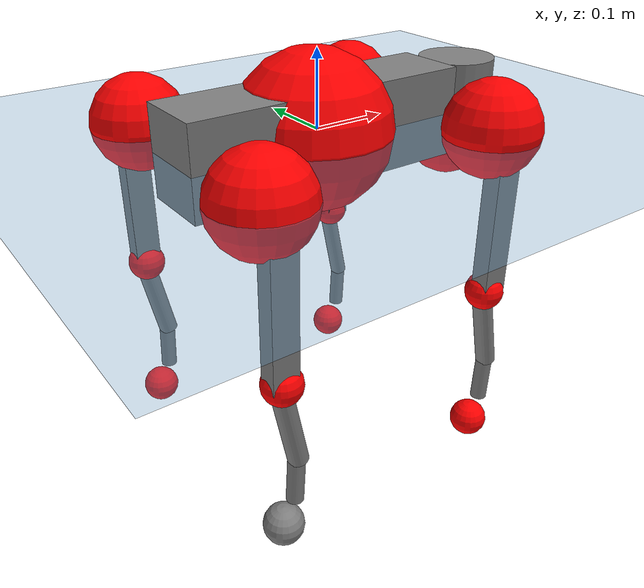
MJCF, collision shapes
<mujoco model="go2">
  <compiler angle="radian" assetdir="assets" balanceinertia="true" inertiafromgeom="false"/>

  <option timestep="0.005" density="1.2" viscosity="2e-05"/>

  <size nkey="1"/>

  <visual>
    <quality shadowsize="8192"/>
    <map shadowclip="0.5"/>
  </visual>

  <default>
    <default class="/">
      <geom contype="0" conaffinity="0" group="1" solref="-1000 -80"/>
      <site size="0.01 0.005 0.005" group="5"/>
      <general forcelimited="true" biastype="affine" gainprm="20" biasprm="0 -20 -0.5"/>
      <default class="go2">
        <joint armature="0.01" damping="0.01" frictionloss="0.2"/>
        <geom condim="1" margin="0.001"/>
        <default class="visual">
          <geom type="mesh" group="2"/>
        </default>
        <default class="collision">
          <geom group="3"/>
          <default class="foot">
            <geom size="0.022 0 0" condim="6" priority="1" friction="0.8 0.02 0.01" solimp="0.015 1 0.022"/>
          </default>
        </default>
        <default class="reward_collision_sphere">
          <geom group="5" rgba="1 0 0 1"/>
        </default>
      </default>
    </default>
  </default>

  <asset>
    <texture type="skybox" colorspace="auto" name="//unnamed_texture_0" builtin="gradient" rgb1="0.95 0.95 0.95" rgb2="0.95 0.95 0.95" width="100" height="600"/>
    <texture type="2d" colorspace="auto" name="texplane" builtin="checker" rgb1="0.345 0.575 0.748" rgb2="0.345 0.575 0.748" markrgb="1 1 1" width="512" height="512"/>
    <material name="MatPlane" class="/" texture="texplane" texuniform="true" texrepeat="2 2" specular="0.9"/>
    <material name="metal" class="/" rgba="0.9 0.95 0.95 1"/>
    <material name="black" class="/" rgba="0 0 0 1"/>
    <material name="white" class="/"/>
    <material name="gray" class="/" rgba="0.671705 0.692426 0.77427 1"/>
    <mesh name="base_0" class="/" file="base_0.obj"/>
    <mesh name="base_1" class="/" file="base_1.obj"/>
    <mesh name="base_2" class="/" file="base_2.obj"/>
    <mesh name="base_3" class="/" file="base_3.obj"/>
    <mesh name="base_4" class="/" file="base_4.obj"/>
    <mesh name="hip_0" class="/" file="hip_0.obj"/>
    <mesh name="hip_1" class="/" file="hip_1.obj"/>
    <mesh name="thigh_0" class="/" file="thigh_0.obj"/>
    <mesh name="thigh_1" class="/" file="thigh_1.obj"/>
    <mesh name="thigh_mirror_0" class="/" file="thigh_mirror_0.obj"/>
    <mesh name="thigh_mirror_1" class="/" file="thigh_mirror_1.obj"/>
    <mesh name="calf_0" class="/" file="calf_0.obj"/>
    <mesh name="calf_1" class="/" file="calf_1.obj"/>
    <mesh name="calf_mirror_0" class="/" file="calf_mirror_0.obj"/>
    <mesh name="calf_mirror_1" class="/" file="calf_mirror_1.obj"/>
    <mesh name="foot" class="/" file="foot.obj"/>
  </asset>

  <worldbody>
    <geom name="floor" class="/" size="100 100 0.125" type="plane" group="0" material="MatPlane"/>
    <light name="toplight_shadow" class="/" pos="0 0 5" dir="0.0990148 0.0990148 -0.990148" type="directional" ambient="0.04 0.04 0.04" diffuse="0.55 0.55 0.55" specular="0.12 0.12 0.12"/>
    <light name="toplight_fill" class="/" pos="0 0 5" dir="0.0990148 0.0990148 -0.990148" type="directional" castshadow="false" ambient="0.04 0.04 0.04" diffuse="0.3 0.3 0.3" specular="0.08 0.08 0.08"/>
    <body name="trunk" childclass="go2" pos="-0.00788365 -0.00200938 0.000769807" quat="0.999995 -0.00203488 0.000106747 0.00252139">
      <inertial pos="0.0249788 -0.000359907 -0.00727703" quat="-0.000490752 0.707645 0.00470338 0.706552" mass="8.19347" diaginertia="0.0454808 0.252074 0.0272032"/>
      <joint name="//unnamed_joint_0" type="free" armature="0" damping="0" frictionloss="0"/>
      <geom name="//unnamed_geom_1" class="visual" material="black" mesh="base_0"/>
      <geom name="//unnamed_geom_2" class="visual" material="black" mesh="base_1"/>
      <geom name="//unnamed_geom_3" class="visual" material="black" mesh="base_2"/>
      <geom name="//unnamed_geom_4" class="visual" material="white" mesh="base_3"/>
      <geom name="//unnamed_geom_5" class="visual" material="gray" mesh="base_4"/>
      <geom name="trunk_1" class="collision" size="0.192588 0.0478653 0.0583599" type="box"/>
      <geom name="trunk_2" class="collision" size="0.0511929 0.0460736" pos="0.240336 0 0.0102036" type="cylinder"/>
      <geom name="trunk_3" class="collision" size="0.0481213" pos="0.247083 0 -0.0612218"/>
      <geom name="//unnamed_geom_9" class="reward_collision_sphere" size="0.102386"/>
      <geom name="//unnamed_geom_10" class="reward_collision_sphere" size="0.0614314" pos="0.23612 0 -0.0459164"/>
      <site name="imu" pos="-0.0321544 -0.00779958 0.0128937" size="0.0102386"/>
      <camera name="track" pos="0 -2.41584 0" quat="0.707107 0.707107 0 0" mode="trackcom"/>
      <camera name="ego_camera" pos="0.263105 0 0.0459164" quat="-0.5 -0.5 0.5 0.5"/>
      <body name="FL_hip" pos="0.164646 0.054922 -0.000366462" quat="1 0.000176727 -1.54041e-05 -0.000181462">
        <inertial pos="-0.00240557 0.00602558 -0.00300036" quat="0.48838 0.501418 0.505173 0.504841" mass="0.751325" diaginertia="0.000347133 0.0015428 0.000529665"/>
        <joint name="FL_hip_joint" pos="0 0 0" axis="0.999226 -0.0363183 0.0151019" range="-1.19603 1.00038" armature="0.0104977" damping="0.00395032" frictionloss="0.197665"/>
        <geom name="//unnamed_geom_11" class="visual" material="metal" mesh="hip_0"/>
        <geom name="//unnamed_geom_12" class="visual" material="gray" mesh="hip_1"/>
        <geom name="//unnamed_geom_13" class="collision" size="0.0470974 0.0204771" pos="0 0.0966338 0" quat="0.707107 0.707107 0 0" type="cylinder"/>
        <geom name="//unnamed_geom_14" class="reward_collision_sphere" size="0.0614314" pos="0 0.0845546 0"/>
        <body name="FL_thigh" pos="-0.00102288 0.11594 -0.00188767" quat="0.999997 -0.000507369 0.00247189 0.000543101">
          <inertial pos="-0.00663565 -0.0243391 -0.0270627" quat="0.828918 0.0861081 -0.0197951 0.552348" mass="1.26174" diaginertia="0.00261978 0.0161036 0.000910786"/>
          <joint name="FL_thigh_joint" pos="0 0 0" axis="0.0035034 0.999993 0.000920192" stiffness="0.0416955" range="-1.58124 3.49911" armature="0.010355" damping="0.000569814" frictionloss="0.198691"/>
          <geom name="//unnamed_geom_15" class="visual" material="metal" mesh="thigh_0"/>
          <geom name="//unnamed_geom_16" class="visual" material="gray" mesh="thigh_1"/>
          <geom name="//unnamed_geom_17" class="collision" size="0.109041 0.0125423 0.0174056" pos="0 0 -0.108669" quat="0.707107 0 0.707107 0" type="box"/>
          <body name="FL_calf" pos="-0.000999272 0.00631993 -0.215721" quat="0.999999 -0.000741984 -0.000148366 0.000965978">
            <inertial pos="0.0100787 -0.000462036 -0.147196" quat="0.710922 0.0014074 -0.00502245 0.703252" mass="0.255654" diaginertia="0.000584694 0.00326642 5.34401e-05"/>
            <joint name="FL_calf_joint" pos="0 0 0" axis="0.00400578 0.999983 0.00429897" range="-2.59674 -0.794575" armature="0.00968978" damping="0.031193" frictionloss="0.191242"/>
            <geom name="//unnamed_geom_18" class="visual" material="gray" mesh="calf_0"/>
            <geom name="//unnamed_geom_19" class="visual" material="black" mesh="calf_1"/>
            <geom name="FL_calf0" class="collision" size="0.0122863 0.0614314" pos="0.00674628 0 -0.0612218" quat="0.994493 0 -0.104807 0" type="cylinder"/>
            <geom name="//unnamed_geom_21" class="collision" size="0.0112624 0.0332754" pos="0.0168657 0 -0.151014" quat="0.999688 0 0.0249974 0" type="cylinder"/>
            <geom name="//unnamed_geom_22" class="visual" pos="0 0 -0.217337" quat="1 0 0 0" material="black" mesh="foot"/>
            <geom name="FL_foot" class="foot" size="0.0164626" pos="-0.00168657 0 -0.217337"/>
            <geom name="//unnamed_geom_24" class="reward_collision_sphere" size="0.0255964"/>
            <geom name="//unnamed_geom_25" class="reward_collision_sphere" size="0.0255964" pos="-0.00168657 0 -0.217337"/>
            <site name="FL_foot" class="foot" pos="-0.00168657 0 -0.217337" size="0.0102386"/>
          </body>
        </body>
      </body>
      <body name="FR_hip" pos="0.166291 -0.0555603 0.00676576" quat="0.999998 -0.000616683 -0.00205124 0.000212146">
        <inertial pos="-0.0057917 0.00333028 8.78485e-05" quat="0.491139 0.517045 0.511003 0.479919" mass="0.738941" diaginertia="0.000403884 0.00156943 0.000560475"/>
        <joint name="FR_hip_joint" pos="0 0 0" axis="0.99998 -0.00538799 -0.00343291" range="-1.0362 1.0417" armature="0.0107858" damping="0.022342" frictionloss="0.257587"/>
        <geom name="//unnamed_geom_26" class="visual" pos="0 1.63393e-09 7.00827e-08" quat="4.63268e-05 1 0 0" material="metal" mesh="hip_0"/>
        <geom name="//unnamed_geom_27" class="visual" pos="0 2.6488e-09 -1.73341e-07" quat="4.63268e-05 1 0 0" material="gray" mesh="hip_1"/>
        <geom name="//unnamed_geom_28" class="collision" size="0.0470974 0.0204771" pos="0 -0.0966338 0" quat="0.707107 0.707107 0 0" type="cylinder"/>
        <geom name="//unnamed_geom_29" class="reward_collision_sphere" size="0.0614314" pos="0 -0.0845546 0"/>
        <body name="FR_thigh" pos="1.88811e-06 -0.107761 -0.00148899" quat="0.999999 0.000781039 -0.00088101 -0.000323156">
          <inertial pos="-0.00477736 0.0309551 -0.0354195" quat="0.559854 -0.0215749 0.075034 0.824905" mass="1.21293" diaginertia="0.00249629 0.0150352 0.000922354"/>
          <joint name="FR_thigh_joint" pos="0 0 0" axis="-0.0110807 -0.999877 -0.0111187" stiffness="0.00970781" range="-3.539 1.47799" armature="0.0105698" damping="0.00545569" frictionloss="0.200464"/>
          <geom name="//unnamed_geom_30" class="visual" material="metal" mesh="thigh_mirror_0"/>
          <geom name="//unnamed_geom_31" class="visual" material="gray" mesh="thigh_mirror_1"/>
          <geom name="//unnamed_geom_32" class="collision" size="0.109041 0.0125423 0.0174056" pos="0 0 -0.108669" quat="0.707107 0 0.707107 0" type="box"/>
          <body name="FR_calf" pos="-0.000972437 0.00437251 -0.217963" quat="1 0.000110647 -0.000337585 -0.000130916">
            <inertial pos="0.00577832 0.00278205 -0.143356" quat="0.707517 0.0034586 -0.0261058 0.706205" mass="0.253317" diaginertia="0.00063909 0.00376571 6.12687e-05"/>
            <joint name="FR_calf_joint" pos="0 0 0" axis="-0.0199047 -0.999432 -0.0271799" stiffness="0.0301862" range="0.878062 2.65523" armature="0.00980448" damping="0" frictionloss="0.204705"/>
            <geom name="//unnamed_geom_33" class="visual" material="gray" mesh="calf_mirror_0"/>
            <geom name="//unnamed_geom_34" class="visual" material="black" mesh="calf_mirror_1"/>
            <geom name="FR_calf0" class="collision" size="0.0133101 0.0614314" pos="0.00843285 0 -0.0612218" quat="0.995004 0 -0.0998334 0" type="cylinder"/>
            <geom name="//unnamed_geom_36" class="collision" size="0.0112624 0.0332754" pos="0.0168657 0 -0.151014" quat="0.999688 0 0.0249974 0" type="cylinder"/>
            <geom name="//unnamed_geom_37" class="visual" pos="0 0 -0.217337" quat="1 0 0 0" material="black" mesh="foot"/>
            <geom name="FR_foot" class="foot" size="0.0228619" pos="-0.00168657 0 -0.217337"/>
            <geom name="//unnamed_geom_39" class="reward_collision_sphere" size="0.0255964"/>
            <geom name="//unnamed_geom_40" class="reward_collision_sphere" size="0.0255964" pos="-0.00168657 0 -0.217337"/>
            <site name="FR_foot" class="foot" pos="-0.00168657 0 -0.217337" size="0.0102386"/>
          </body>
        </body>
      </body>
      <body name="RL_hip" pos="-0.165924 0.0567697 0.00450752" quat="1 -2.31672e-05 -0.000796685 -0.000418771">
        <inertial pos="0.00464508 -0.00461655 0.00379396" quat="0.473539 0.499066 0.522646 0.503523" mass="0.681995" diaginertia="0.000396271 0.00154656 0.000501503"/>
        <joint name="RL_hip_joint" pos="0 0 0" axis="-0.999704 0.0135437 -0.0202311" range="-1.09126 1.08723" armature="0.0124608" damping="0" frictionloss="0.145001"/>
        <geom name="//unnamed_geom_41" class="visual" pos="1.54263e-09 0 3.02392e-07" quat="4.63268e-05 0 1 0" material="metal" mesh="hip_0"/>
        <geom name="//unnamed_geom_42" class="visual" pos="2.50079e-09 0 2.68178e-07" quat="4.63268e-05 0 1 0" material="gray" mesh="hip_1"/>
        <geom name="//unnamed_geom_43" class="collision" size="0.0470974 0.0204771" pos="0 0.0966338 0" quat="0.707107 0.707107 0 0" type="cylinder"/>
        <geom name="//unnamed_geom_44" class="reward_collision_sphere" size="0.0614314" pos="0 0.0845546 0"/>
        <body name="RL_thigh" pos="-6.50658e-05 0.120927 -0.0057906" quat="0.999999 0.000529558 -0.000943409 -0.000259643">
          <inertial pos="-0.00300421 -0.025911 -0.0311036" quat="0.828305 0.0859822 -0.0193675 0.553302" mass="1.14637" diaginertia="0.0026323 0.0156876 0.000954295"/>
          <joint name="RL_thigh_joint" pos="0 0 0" axis="-0.0118929 0.999928 0.00170976" range="-0.489278 4.55575" armature="0.00835152" damping="0.0126802" frictionloss="0.205611"/>
          <geom name="//unnamed_geom_45" class="visual" material="metal" mesh="thigh_0"/>
          <geom name="//unnamed_geom_46" class="visual" material="gray" mesh="thigh_1"/>
          <geom name="//unnamed_geom_47" class="collision" size="0.109041 0.0125423 0.0174056" pos="0 0 -0.108669" quat="0.707107 0 0.707107 0" type="box"/>
          <body name="RL_calf" pos="0.000239154 -0.000545446 -0.210651" quat="1 -0.000722152 -0.000197196 0.000642493">
            <inertial pos="0.00477762 -0.00819454 -0.142496" quat="0.707193 -0.000856349 -0.00860242 0.706968" mass="0.261119" diaginertia="0.000653824 0.00388527 6.49567e-05"/>
            <joint name="RL_calf_joint" pos="0 0 0" axis="0.0141452 0.999817 0.0128849" stiffness="0.040763" range="-2.70894 -0.848849" armature="0.00942922" damping="0.0226054" frictionloss="0.13127"/>
            <geom name="//unnamed_geom_48" class="visual" material="gray" mesh="calf_0"/>
            <geom name="//unnamed_geom_49" class="visual" material="black" mesh="calf_1"/>
            <geom name="RL_calf0" class="collision" size="0.0133101 0.0614314" pos="0.00843285 0 -0.0612218" quat="0.995004 0 -0.0998334 0" type="cylinder"/>
            <geom name="//unnamed_geom_51" class="collision" size="0.0112624 0.0332754" pos="0.0168657 0 -0.151014" quat="0.999688 0 0.0249974 0" type="cylinder"/>
            <geom name="//unnamed_geom_52" class="visual" pos="0 0 -0.217337" quat="1 0 0 0" material="black" mesh="foot"/>
            <geom name="RL_foot" class="foot" size="0.0234037" pos="-0.00168657 0 -0.217337"/>
            <geom name="//unnamed_geom_54" class="reward_collision_sphere" size="0.0255964"/>
            <geom name="//unnamed_geom_55" class="reward_collision_sphere" size="0.0255964" pos="-0.00168657 0 -0.217337"/>
            <site name="RL_foot" class="foot" pos="-0.00168657 0 -0.217337" size="0.0102386"/>
          </body>
        </body>
      </body>
      <body name="RR_hip" pos="-0.16233 -0.0549292 -0.00352946" quat="0.999994 0.00247738 0.00190659 -0.00149018">
        <inertial pos="-0.00270238 -0.00612275 0.00699747" quat="0.504641 0.496563 0.506258 0.492408" mass="0.719256" diaginertia="0.000370196 0.00149361 0.000512256"/>
        <joint name="RR_hip_joint" pos="0 0 0" axis="-0.999273 0.0123726 -0.0360538" range="-1.03555 1.08753" armature="0.0106764" damping="0" frictionloss="0.225315"/>
        <geom name="//unnamed_geom_56" class="visual" pos="-1.53001e-09 1.63393e-09 2.32309e-07" quat="2.14617e-09 4.63268e-05 4.63268e-05 -1" material="metal" mesh="hip_0"/>
        <geom name="//unnamed_geom_57" class="visual" pos="-2.53202e-09 2.6488e-09 4.4152e-07" quat="2.14617e-09 4.63268e-05 4.63268e-05 -1" material="gray" mesh="hip_1"/>
        <geom name="//unnamed_geom_58" class="collision" size="0.0470974 0.0204771" pos="0 -0.0966338 0" quat="0.707107 0.707107 0 0" type="cylinder"/>
        <geom name="//unnamed_geom_59" class="reward_collision_sphere" size="0.0614314" pos="0 -0.0845546 0"/>
        <body name="RR_thigh" pos="-0.000932446 -0.11472 0.00740153" quat="1 -5.25099e-05 -1.69667e-05 -3.96534e-05">
          <inertial pos="-0.00556951 0.0269657 -0.0335674" quat="0.552333 -0.0214732 0.0855683 0.828942" mass="1.31909" diaginertia="0.00247117 0.0145221 0.000966338"/>
          <joint name="RR_thigh_joint" pos="0 0 0" axis="-0.00605299 -0.999917 -0.0113771" range="-4.55444 0.41732" armature="0.00906353" damping="0.0156829" frictionloss="0.225283"/>
          <geom name="//unnamed_geom_60" class="visual" material="metal" mesh="thigh_mirror_0"/>
          <geom name="//unnamed_geom_61" class="visual" material="gray" mesh="thigh_mirror_1"/>
          <geom name="//unnamed_geom_62" class="collision" size="0.109041 0.0125423 0.0174056" pos="0 0 -0.108669" quat="0.707107 0 0.707107 0" type="box"/>
          <body name="RR_calf" pos="0.00356738 0.00284531 -0.218406" quat="1 0.000226798 -0.000651694 0.000518908">
            <inertial pos="0.00887384 0.00310341 -0.144905" quat="0.708402 -0.00646723 0.00412448 0.705768" mass="0.254691" diaginertia="0.000643205 0.00384848 5.57742e-05"/>
            <joint name="RR_calf_joint" pos="0 0 0" axis="0.0192379 -0.999532 -0.0237999" range="0.831173 2.72897" armature="0.00963141" damping="0" frictionloss="0.190141"/>
            <geom name="//unnamed_geom_63" class="visual" material="gray" mesh="calf_mirror_0"/>
            <geom name="//unnamed_geom_64" class="visual" material="black" mesh="calf_mirror_1"/>
            <geom name="RR_calf0" class="collision" size="0.0133101 0.0614314" pos="0.00843285 0 -0.0612218" quat="0.995004 0 -0.0998334 0" type="cylinder"/>
            <geom name="//unnamed_geom_66" class="collision" size="0.0112624 0.0332754" pos="0.0168657 0 -0.151014" quat="0.999688 0 0.0249974 0" type="cylinder"/>
            <geom name="//unnamed_geom_67" class="visual" pos="0 0 -0.217337" quat="1 0 0 0" material="black" mesh="foot"/>
            <geom name="RR_foot" class="foot" size="0.026581" pos="-0.00168657 0 -0.217337"/>
            <geom name="//unnamed_geom_69" class="reward_collision_sphere" size="0.0255964"/>
            <geom name="//unnamed_geom_70" class="reward_collision_sphere" size="0.0255964" pos="-0.00168657 0 -0.217337"/>
            <site name="RR_foot" class="foot" pos="-0.00168657 0 -0.217337" size="0.0102386"/>
          </body>
        </body>
      </body>
    </body>
  </worldbody>

  <contact>
    <pair class="/" geom1="floor" geom2="FL_foot" name="//unnamed_contact_0"/>
    <pair class="/" geom1="floor" geom2="FR_foot" name="//unnamed_contact_1"/>
    <pair class="/" geom1="floor" geom2="RL_foot" name="//unnamed_contact_2"/>
    <pair class="/" geom1="floor" geom2="RR_foot" name="//unnamed_contact_3"/>
  </contact>

  <actuator>
    <general name="FL_hip" class="/" joint="FL_hip_joint" forcerange="-24.8266 24.8266" gainprm="19.5265" biasprm="0 -19.5265 -0.554406"/>
    <general name="FL_thigh" class="/" joint="FL_thigh_joint" forcerange="-25.5607 25.5607" gainprm="19.5265" biasprm="0 -19.5265 -0.554406"/>
    <general name="FL_calf" class="/" joint="FL_calf_joint" forcerange="-42.2797 42.2797" gainprm="19.5265" biasprm="0 -19.5265 -0.554406"/>
    <general name="FR_hip" class="/" joint="FR_hip_joint" forcerange="-23.0008 23.0008" gainprm="19.5265" biasprm="0 -19.5265 -0.554406"/>
    <general name="FR_thigh" class="/" joint="FR_thigh_joint" forcerange="-23.0349 23.0349" gainprm="19.5265" biasprm="0 -19.5265 -0.554406"/>
    <general name="FR_calf" class="/" joint="FR_calf_joint" forcerange="-44.5516 44.5516" gainprm="19.5265" biasprm="0 -19.5265 -0.554406"/>
    <general name="RL_hip" class="/" joint="RL_hip_joint" forcerange="-17.9576 17.9576" gainprm="19.5265" biasprm="0 -19.5265 -0.554406"/>
    <general name="RL_thigh" class="/" joint="RL_thigh_joint" forcerange="-25.2597 25.2597" gainprm="19.5265" biasprm="0 -19.5265 -0.554406"/>
    <general name="RL_calf" class="/" joint="RL_calf_joint" forcerange="-58.4819 58.4819" gainprm="19.5265" biasprm="0 -19.5265 -0.554406"/>
    <general name="RR_hip" class="/" joint="RR_hip_joint" forcerange="-26.945 26.945" gainprm="19.5265" biasprm="0 -19.5265 -0.554406"/>
    <general name="RR_thigh" class="/" joint="RR_thigh_joint" forcerange="-18.3674 18.3674" gainprm="19.5265" biasprm="0 -19.5265 -0.554406"/>
    <general name="RR_calf" class="/" joint="RR_calf_joint" forcerange="-51.5584 51.5584" gainprm="19.5265" biasprm="0 -19.5265 -0.554406"/>
  </actuator>

  <sensor>
    <gyro site="imu" name="imu_angular_velocity"/>
    <velocimeter site="imu" name="imu_linear_velocity"/>
    <framelinvel objtype="site" objname="FL_foot" name="FL_foot_global_linear_velocity"/>
    <framelinvel objtype="site" objname="FR_foot" name="FR_foot_global_linear_velocity"/>
    <framelinvel objtype="site" objname="RL_foot" name="RL_foot_global_linear_velocity"/>
    <framelinvel objtype="site" objname="RR_foot" name="RR_foot_global_linear_velocity"/>
  </sensor>

  <keyframe>
    <key name="home" qpos="0 0 0.325 1 0 0 0 0.1 0.8 -1.5 -0.1 -0.8 1.5 -0.1 0.8 -1.5 0.1 -0.8 1.5"/>
  </keyframe>
</mujoco>
